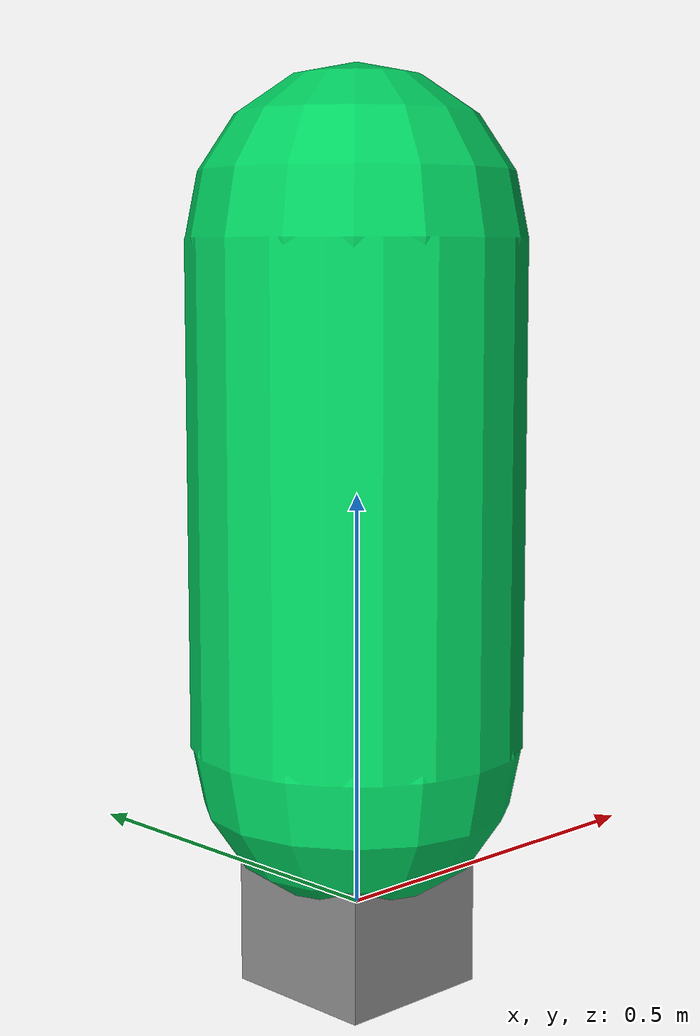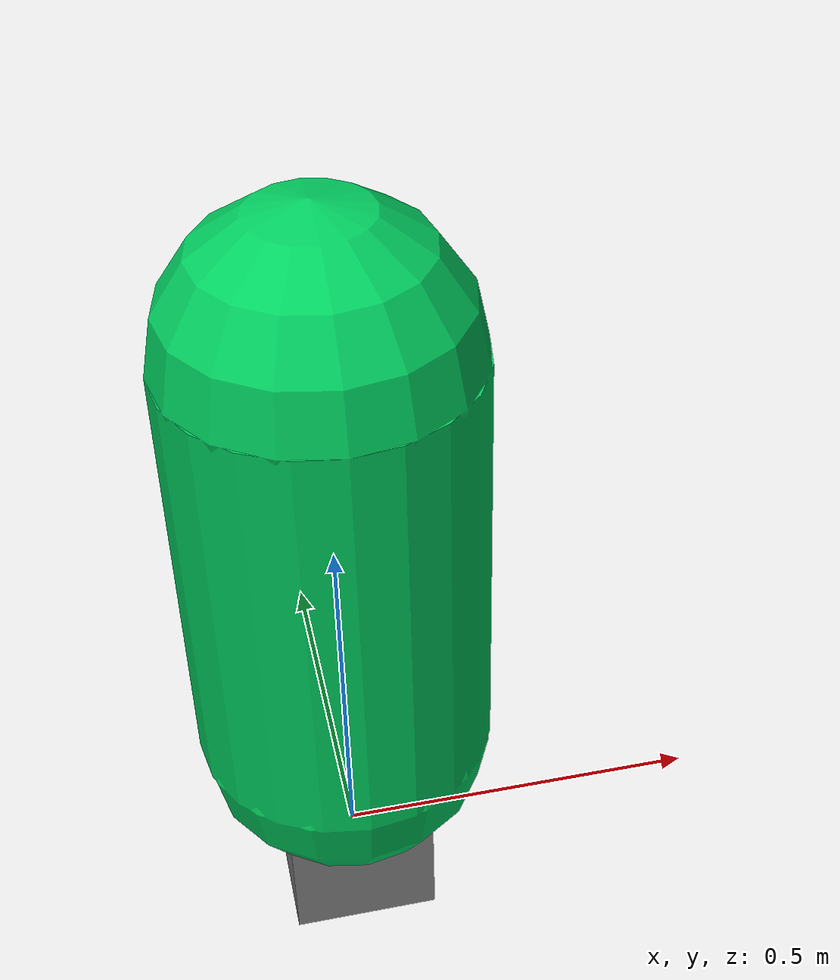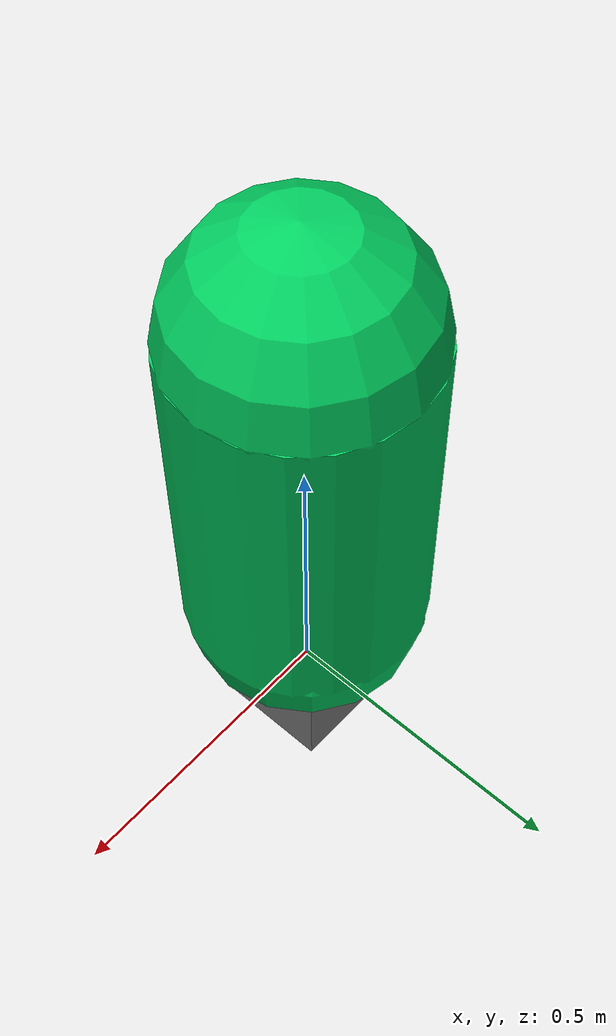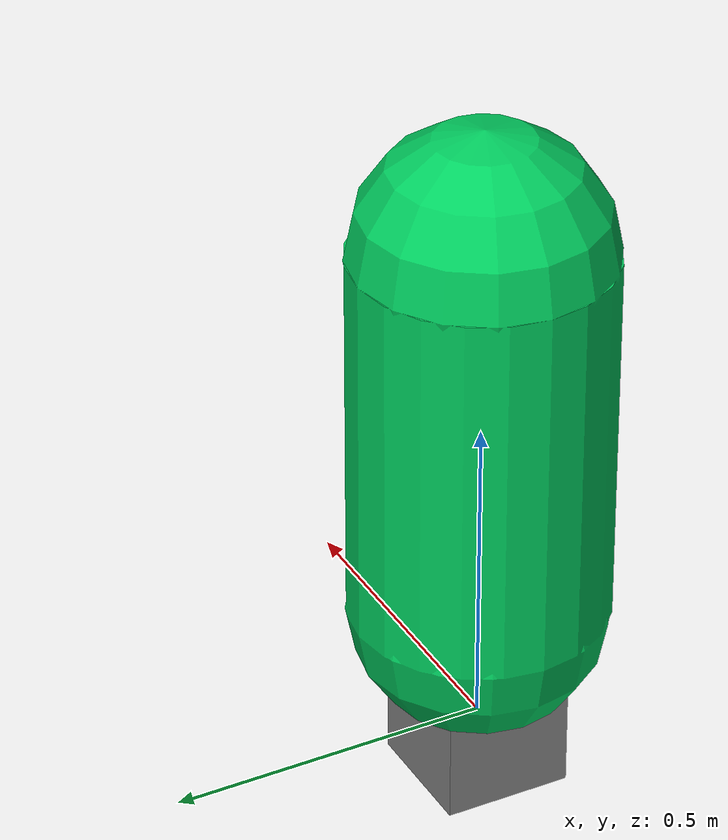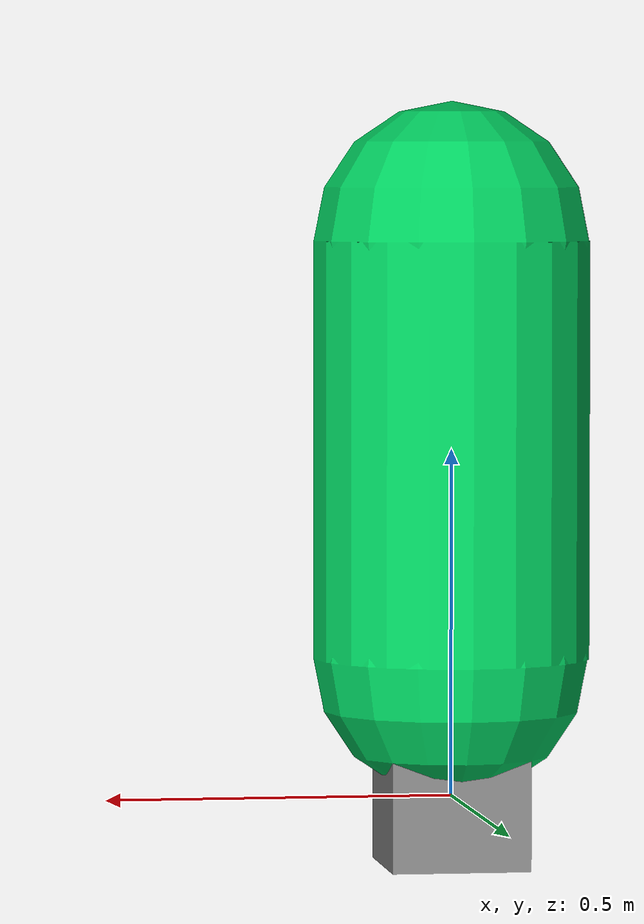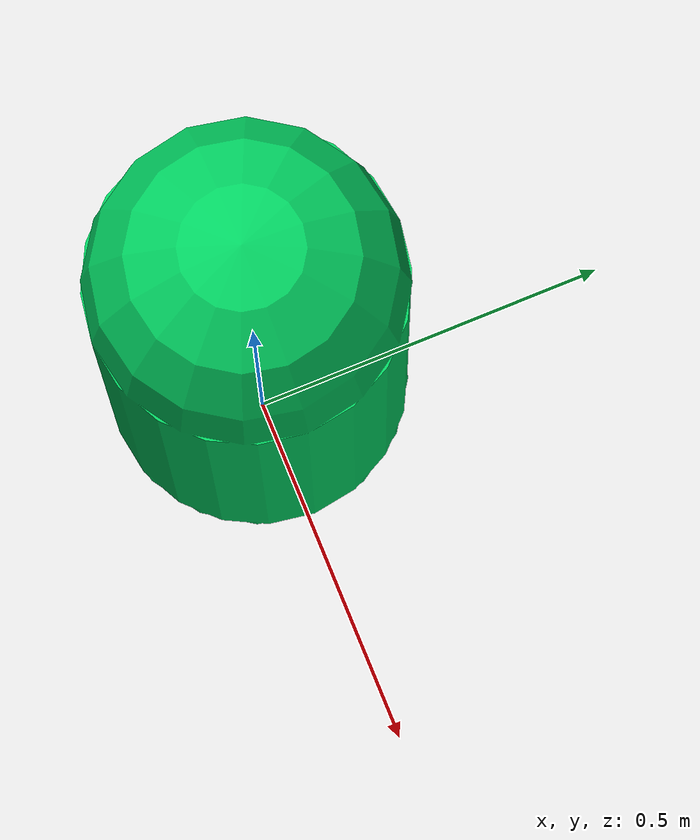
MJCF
<mujoco>
  <compiler inertiafromgeom="true" angle="radian" coordinate="local"/>
  <option timestep="0.01" gravity="0 0 0" iterations="20" integrator="Euler"/>
  <default>
    <joint damping="1" limited='false'/>
    <geom friction=".5 .1 .1" density="1000" margin="0.002" condim="1" contype="2" conaffinity="1"/>
  </default>
  <asset>
    <material name="Body" specular="0.5" shininess="0.36" rgba="0.000000 0.520996 0.791299 1.000000"/>
    <material name="Ears" specular="0.5" shininess="0.81" rgba="0.791299 0.040915 0.008568 1.000000"/>
    <material name="Eyes" specular="0.5" shininess="0.81" rgba="0.000000 0.080382 0.603827 1.000000"/>
    <material name="Hat" specular="0.5" shininess="0.36" rgba="0.063724 0.021981 0.132868 1.000000"/>
    <material name="Lamp" specular="0.5" shininess="1.0" rgba="1.000000 0.334208 0.032648 1.000000"/>
    <material name="Mouth" specular="0.5" shininess="0.49" rgba="0.012983 0.045186 0.266355 1.000000"/>
    <material name="White" specular="0.5" shininess="1.0" rgba="0.603827 0.603827 0.603827 1.000000"/>
    <texture type="2d" name="grid" builtin="checker" rgb1="1 1 1" rgb2="1 1 1" mark="edge" width="100" height="100"/>
    <material name="target" emission=".2" specular=".5" shininess=".7" reflectance="0" rgba="0 .8 .37 1"/>
    <material name="#" texture="grid" texrepeat="1 1" emission="0" specular="0" shininess="1" reflectance="1" rgba=".2 .2 .2 1"/>
    <material name=" " texture="grid" texrepeat="1 1" emission="0" specular="0" shininess="1" reflectance="1" rgba=".4 .4 .4 1"/>
  </asset>
  <visual><headlight ambient=".4 .4 .4" diffuse=".8 .8 .8" specular="0.1 0.1 0.1"/></visual>
  <worldbody>
    <body name="particle" pos="0 0 0" >
      <body name="Agent" pos="0 0 0" quat="0 0 0.7071 0.7071">
        <geom type="box" pos="0 0 0" size=".1 .1 .1" />
      </body>
      <joint name="ball_x" type="slide" pos="0 0 0" axis="1 0 0"/>
      <joint name="ball_y" type="slide" pos="0 0 0" axis="0 1 0"/>
    </body>
    <site name="target" material="target" type="capsule" pos="0 0 0.5" size="0.2 0.3" />
  </worldbody>
  <actuator>
    <motor name="motor_x" joint="ball_x" ctrlrange="-1.0 1.0" ctrllimited="true" gear="3000"/>
    <motor name="motor_y" joint="ball_y" ctrlrange="-1.0 1.0" ctrllimited="true" gear="3000"/>
  </actuator>
</mujoco>
